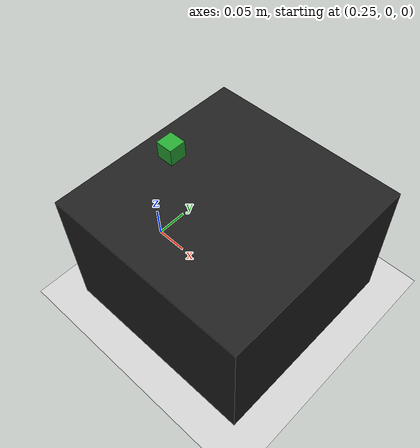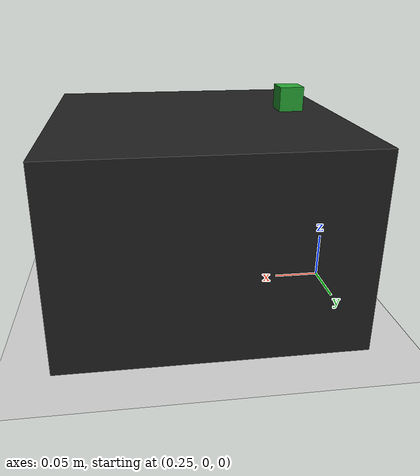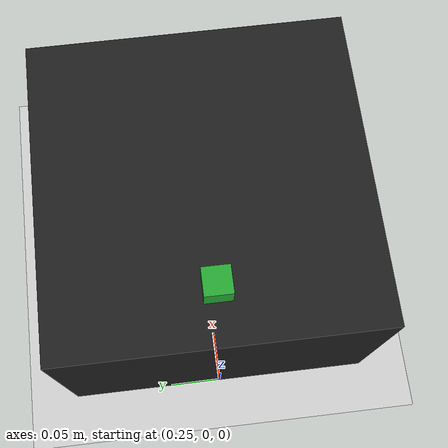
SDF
<?xml version='1.0' ?>
<sdf version='1.4'>
  <world name='grasping'>

<plugin name="gz::sim::systems::Physics" filename="gz-sim-physics-system"/>
    <plugin name="gz::sim::systems::UserCommands" filename="gz-sim-user-commands-system"/>
    <plugin name="gz::sim::systems::SceneBroadcaster" filename="gz-sim-scene-broadcaster-system"/>
    <plugin name="gz::sim::systems::Contact" filename="gz-sim-contact-system"/>
    <plugin name="gz::sim::systems::Imu" filename="gz-sim-imu-system"/>
    <plugin name="gz::sim::systems::AirPressure" filename="gz-sim-air-pressure-system"/>
    <plugin name="gz::sim::systems::ApplyLinkWrench" filename="gz-sim-apply-link-wrench-system"/>
    <plugin name="gz::sim::systems::NavSat" filename="gz-sim-navsat-system"/>
    <plugin name="gz::sim::systems::Sensors" filename="gz-sim-sensors-system">
      <render_engine>ogre2</render_engine>
    </plugin>
    <gui fullscreen="false">
      <!-- 3D scene -->
      <plugin filename="MinimalScene" name="3D View">
        <gz-gui>
          <title>3D View</title>
          <property type="bool" key="showTitleBar">false</property>
          <property type="string" key="state">docked</property>
        </gz-gui>
        <engine>ogre2</engine>
        <scene>scene</scene>
        <ambient_light>0.4 0.4 0.4</ambient_light>
        <background_color>0.8 0.8 0.8</background_color>
        <camera_pose>-6 0 6 0 0.5 0</camera_pose>
        <camera_clip>
          <near>0.25</near>
          <far>25000</far>
        </camera_clip>
      </plugin>
      <!-- Plugins that add functionality to the scene -->
      <plugin filename="EntityContextMenuPlugin" name="Entity context menu">
        <gz-gui>
          <property key="state" type="string">floating</property>
          <property key="width" type="double">5</property>
          <property key="height" type="double">5</property>
          <property key="showTitleBar" type="bool">false</property>
        </gz-gui>
      </plugin>
      <plugin filename="GzSceneManager" name="Scene Manager">
        <gz-gui>
          <property key="resizable" type="bool">false</property>
          <property key="width" type="double">5</property>
          <property key="height" type="double">5</property>
          <property key="state" type="string">floating</property>
          <property key="showTitleBar" type="bool">false</property>
        </gz-gui>
      </plugin>
      <plugin filename="InteractiveViewControl" name="Interactive view control">
        <gz-gui>
          <property key="resizable" type="bool">false</property>
          <property key="width" type="double">5</property>
          <property key="height" type="double">5</property>
          <property key="state" type="string">floating</property>
          <property key="showTitleBar" type="bool">false</property>
        </gz-gui>
      </plugin>
      <plugin filename="CameraTracking" name="Camera Tracking">
        <gz-gui>
          <property key="resizable" type="bool">false</property>
          <property key="width" type="double">5</property>
          <property key="height" type="double">5</property>
          <property key="state" type="string">floating</property>
          <property key="showTitleBar" type="bool">false</property>
        </gz-gui>
      </plugin>
      <plugin filename="MarkerManager" name="Marker manager">
        <gz-gui>
          <property key="resizable" type="bool">false</property>
          <property key="width" type="double">5</property>
          <property key="height" type="double">5</property>
          <property key="state" type="string">floating</property>
          <property key="showTitleBar" type="bool">false</property>
        </gz-gui>
      </plugin>
      <plugin filename="SelectEntities" name="Select Entities">
        <gz-gui>
          <anchors target="Select entities">
            <line own="right" target="right"/>
            <line own="top" target="top"/>
          </anchors>
          <property key="resizable" type="bool">false</property>
          <property key="width" type="double">5</property>
          <property key="height" type="double">5</property>
          <property key="state" type="string">floating</property>
          <property key="showTitleBar" type="bool">false</property>
        </gz-gui>
      </plugin>
      <plugin filename="VisualizationCapabilities" name="Visualization Capabilities">
        <gz-gui>
          <property key="resizable" type="bool">false</property>
          <property key="width" type="double">5</property>
          <property key="height" type="double">5</property>
          <property key="state" type="string">floating</property>
          <property key="showTitleBar" type="bool">false</property>
        </gz-gui>
      </plugin>
      <plugin filename="Spawn" name="Spawn Entities">
        <gz-gui>
          <anchors target="Select entities">
            <line own="right" target="right"/>
            <line own="top" target="top"/>
          </anchors>
          <property key="resizable" type="bool">false</property>
          <property key="width" type="double">5</property>
          <property key="height" type="double">5</property>
          <property key="state" type="string">floating</property>
          <property key="showTitleBar" type="bool">false</property>
        </gz-gui>
      </plugin>
      <plugin name="World control" filename="WorldControl">
        <gz-gui>
          <title>World control</title>
          <property type="bool" key="showTitleBar">0</property>
          <property type="bool" key="resizable">0</property>
          <property type="double" key="height">72</property>
          <property type="double" key="width">121</property>
          <property type="double" key="z">1</property>
          <property type="string" key="state">floating</property>
          <anchors target="3D View">
            <line own="left" target="left"/>
            <line own="bottom" target="bottom"/>
          </anchors>
        </gz-gui>
        <play_pause>1</play_pause>
        <step>1</step>
        <start_paused>1</start_paused>
      </plugin>
      <plugin name="World stats" filename="WorldStats">
        <gz-gui>
          <title>World stats</title>
          <property type="bool" key="showTitleBar">0</property>
          <property type="bool" key="resizable">0</property>
          <property type="double" key="height">110</property>
          <property type="double" key="width">290</property>
          <property type="double" key="z">1</property>
          <property type="string" key="state">floating</property>
          <anchors target="3D View">
            <line own="right" target="right"/>
            <line own="bottom" target="bottom"/>
          </anchors>
        </gz-gui>
        <sim_time>1</sim_time>
        <real_time>1</real_time>
        <real_time_factor>1</real_time_factor>
        <iterations>1</iterations>
      </plugin>
      <plugin name="Entity tree" filename="EntityTree"/>
    </gui>

    <!-- A global light source -->
    <include>
      <uri>model://sun</uri>
    </include>

    <!-- A ground plane -->
    <include>
      <uri>model://ground_plane</uri>
    </include>

    <!-- Physics settings for simulation -->
    <physics type='ode'>
      <max_step_size>0.001</max_step_size>
      <real_time_factor>1</real_time_factor>
      <real_time_update_rate>1000</real_time_update_rate>
      <gravity>0 0 -9.81</gravity>
    </physics>

<model name='coke_can_box_model'>
      <pose frame=''>0.30 0.0 0.2165 0 0 0</pose>
      <link name='coke_can'>
      <inertial>
        <mass>0.0073</mass>
        <inertia>
          <ixx>7.604166666666669e-07</ixx>
          <ixy>0</ixy>
          <ixz>0</ixz>
          <iyy>7.604166666666669e-07</iyy>
          <iyz>0</iyz>
          <izz>7.604166666666669e-07</izz>
        </inertia>
      </inertial>

      <collision name="collision">
        <geometry>
          <box>
            <size>0.025 0.025 0.025</size>
          </box>
        </geometry>
        <surface>
          <contact>
            <!-- Red Pine coefficients for longitudinal axis of the wood
                 according to:
                 http://www.fpl.fs.fed.us/documnts/fplgtr/fplgtr113/ch04.pdf -->
            <poissons_ratio>0.347</poissons_ratio>
            <elastic_modulus>8.8e+09</elastic_modulus>
            <ode>
              <kp>100000</kp>
              <kd>100</kd>
              <max_vel>100.0</max_vel>
              <min_depth>0.001</min_depth>
            </ode>
          </contact>
          <friction>
            <torsional>
              <coefficient>1.0</coefficient>
              <use_patch_radius>0</use_patch_radius>
              <surface_radius>0.01</surface_radius>
            </torsional>
          </friction>
        </surface>
      </collision>

      <visual name="visual">
        <geometry>
          <box>
            <size>0.025 0.025 0.025</size>
          </box>
        </geometry>
          <material>
            <script>
              <name>Gazebo/Green</name>
              <uri>file://media/materials/scripts/gazebo.material</uri>
            </script>
          </material>
        </visual>
        <self_collide>0</self_collide>
        <kinematic>0</kinematic>
      </link>
    </model>

   <model name='table_box_model'>
      <static>true</static>
      <pose frame=''>0.40 0.0 0.1 0 -0 1.5707963265</pose>
      <link name='table_box_link'>
        <inertial>
          <mass>1</mass>
          <inertia>
            <ixx>0.166667</ixx>
            <ixy>0</ixy>
            <ixz>0</ixz>
            <iyy>0.166667</iyy>
            <iyz>0</iyz>
            <izz>0.166667</izz>
          </inertia>
        </inertial>
        <collision name='collision'>
          <geometry>
            <box>
              <size>0.30 0.30 0.2</size>
            </box>
          </geometry>
          <max_contacts>10</max_contacts>
          <surface>
            <contact>
              <ode/>
            </contact>
            <bounce/>
            <friction>
              <ode>
                <mu>0.6</mu>
                <mu2>0.6</mu2>
              </ode>
              <torsional>
                <ode/>
              </torsional>
            </friction>
          </surface>
        </collision>
        <visual name='visual'>
          <geometry>
            <box>
              <size>0.30 0.30 0.2</size>
            </box>
          </geometry>
          <material>
            <script>
              <name>Gazebo/Black</name>
              <uri>file://media/materials/scripts/gazebo.material</uri>
            </script>
          </material>
        </visual>
        <self_collide>0</self_collide>
        <kinematic>0</kinematic>
      </link>
    </model>

  </world>
</sdf>
